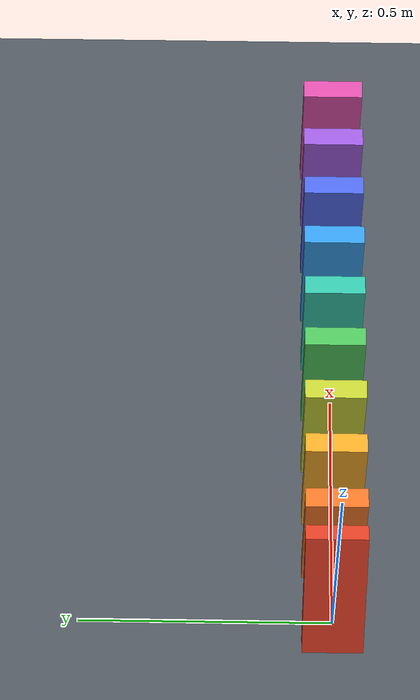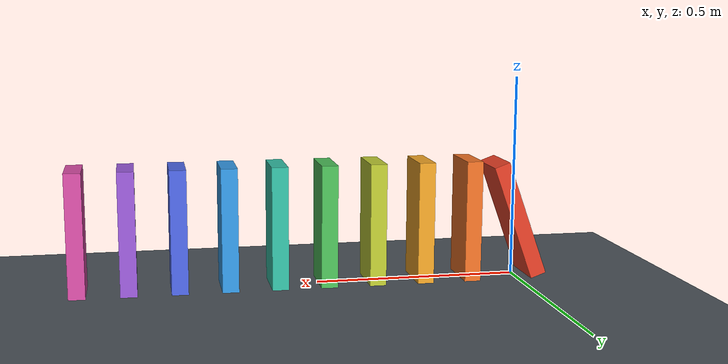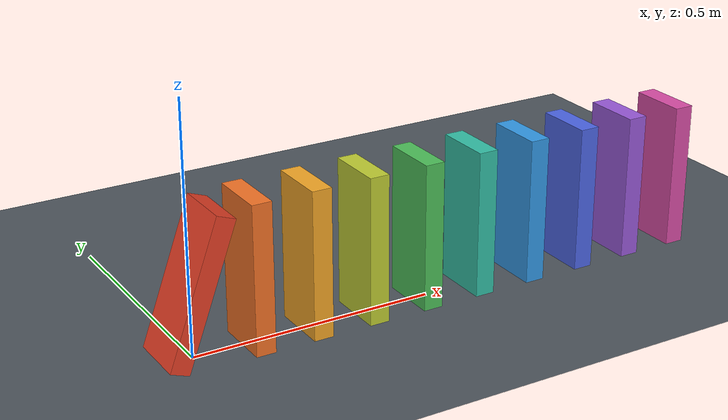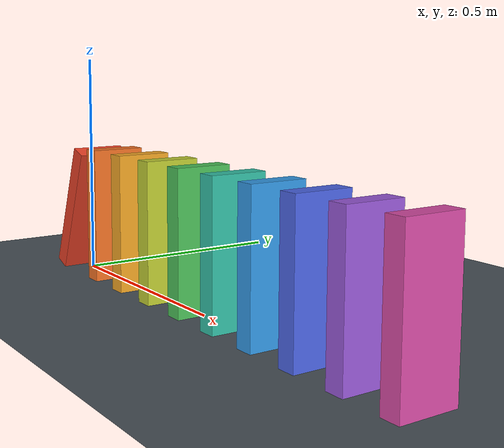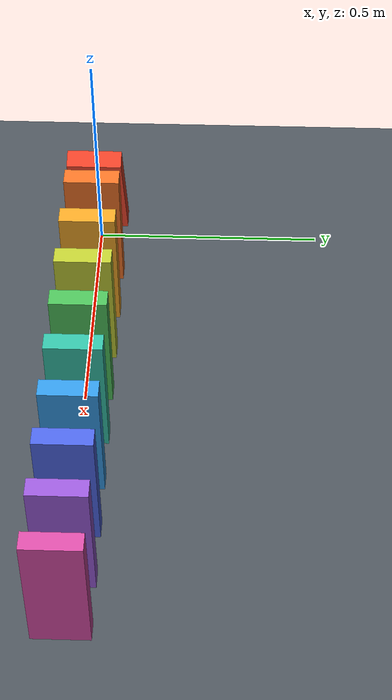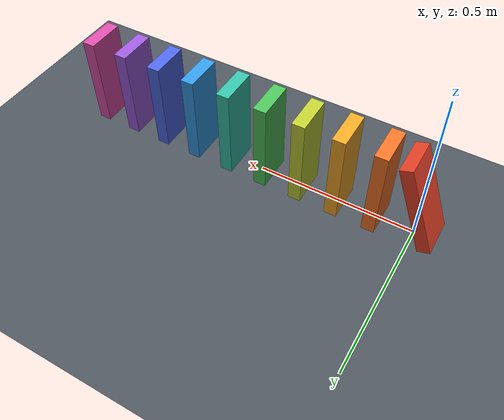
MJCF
<mujoco model="ten_domino_chain">
  <compiler angle="degree"/>
  <option timestep="0.002" gravity="0 0 -9.81" integrator="implicitfast" solver="Newton" iterations="100"/>
  <size nconmax="200" njmax="1000"/>

  <worldbody>
    <light name="overhead_light" pos="0.5 -1 3" dir="0 0 -1"/>
    <camera name="overview" pos="0.54 -2.2 1.3" xyaxes="1 0 0 0 0.5 0.8660254"/>
    <geom name="floor" type="plane" pos="0 0 0" size="3 2 0.1" friction="0.9 0.005 0.0001" solref="0.006 1" solimp="0.95 0.99 0.001" rgba="0.3 0.33 0.36 1"/>

    <body name="domino1" pos="0 0 0.147794296" quat="0.984807753 0 0.173648178 0">
      <freejoint/>
      <geom name="domino1_geom" type="box" size="0.02 0.06 0.15" mass="0.25" friction="0.9 0.005 0.0001" solref="0.006 1" solimp="0.95 0.99 0.001" rgba="0.9 0.25 0.15 1"/>
    </body>

    <body name="domino2" pos="0.12 0 0.15">
      <freejoint/>
      <geom name="domino2_geom" type="box" size="0.02 0.06 0.15" mass="0.25" friction="0.9 0.005 0.0001" solref="0.006 1" solimp="0.95 0.99 0.001" rgba="0.95 0.45 0.15 1"/>
    </body>

    <body name="domino3" pos="0.24 0 0.15">
      <freejoint/>
      <geom name="domino3_geom" type="box" size="0.02 0.06 0.15" mass="0.25" friction="0.9 0.005 0.0001" solref="0.006 1" solimp="0.95 0.99 0.001" rgba="0.95 0.65 0.15 1"/>
    </body>

    <body name="domino4" pos="0.36 0 0.15">
      <freejoint/>
      <geom name="domino4_geom" type="box" size="0.02 0.06 0.15" mass="0.25" friction="0.9 0.005 0.0001" solref="0.006 1" solimp="0.95 0.99 0.001" rgba="0.75 0.8 0.2 1"/>
    </body>

    <body name="domino5" pos="0.48 0 0.15">
      <freejoint/>
      <geom name="domino5_geom" type="box" size="0.02 0.06 0.15" mass="0.25" friction="0.9 0.005 0.0001" solref="0.006 1" solimp="0.95 0.99 0.001" rgba="0.3 0.75 0.35 1"/>
    </body>

    <body name="domino6" pos="0.60 0 0.15">
      <freejoint/>
      <geom name="domino6_geom" type="box" size="0.02 0.06 0.15" mass="0.25" friction="0.9 0.005 0.0001" solref="0.006 1" solimp="0.95 0.99 0.001" rgba="0.2 0.75 0.65 1"/>
    </body>

    <body name="domino7" pos="0.72 0 0.15">
      <freejoint/>
      <geom name="domino7_geom" type="box" size="0.02 0.06 0.15" mass="0.25" friction="0.9 0.005 0.0001" solref="0.006 1" solimp="0.95 0.99 0.001" rgba="0.2 0.6 0.9 1"/>
    </body>

    <body name="domino8" pos="0.84 0 0.15">
      <freejoint/>
      <geom name="domino8_geom" type="box" size="0.02 0.06 0.15" mass="0.25" friction="0.9 0.005 0.0001" solref="0.006 1" solimp="0.95 0.99 0.001" rgba="0.3 0.4 0.9 1"/>
    </body>

    <body name="domino9" pos="0.96 0 0.15">
      <freejoint/>
      <geom name="domino9_geom" type="box" size="0.02 0.06 0.15" mass="0.25" friction="0.9 0.005 0.0001" solref="0.006 1" solimp="0.95 0.99 0.001" rgba="0.6 0.35 0.85 1"/>
    </body>

    <body name="domino10" pos="1.08 0 0.15">
      <freejoint/>
      <geom name="domino10_geom" type="box" size="0.02 0.06 0.15" mass="0.25" friction="0.9 0.005 0.0001" solref="0.006 1" solimp="0.95 0.99 0.001" rgba="0.85 0.3 0.65 1"/>
    </body>
  </worldbody>

  <keyframe>
    <key name="start" qvel="0.295588592 0 -0.065018338 0 2 0  0 0 0 0 0 0  0 0 0 0 0 0  0 0 0 0 0 0  0 0 0 0 0 0  0 0 0 0 0 0  0 0 0 0 0 0  0 0 0 0 0 0  0 0 0 0 0 0  0 0 0 0 0 0"/>
  </keyframe>
</mujoco>
